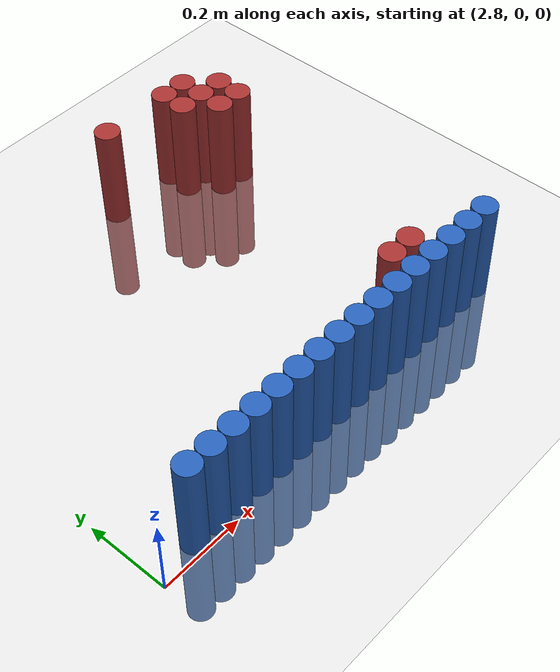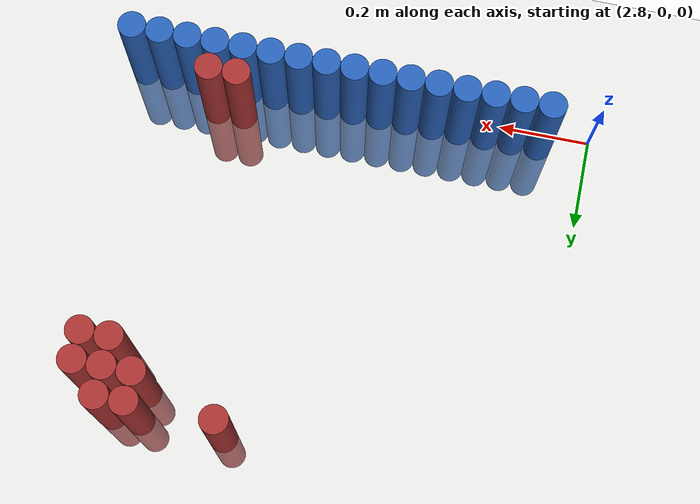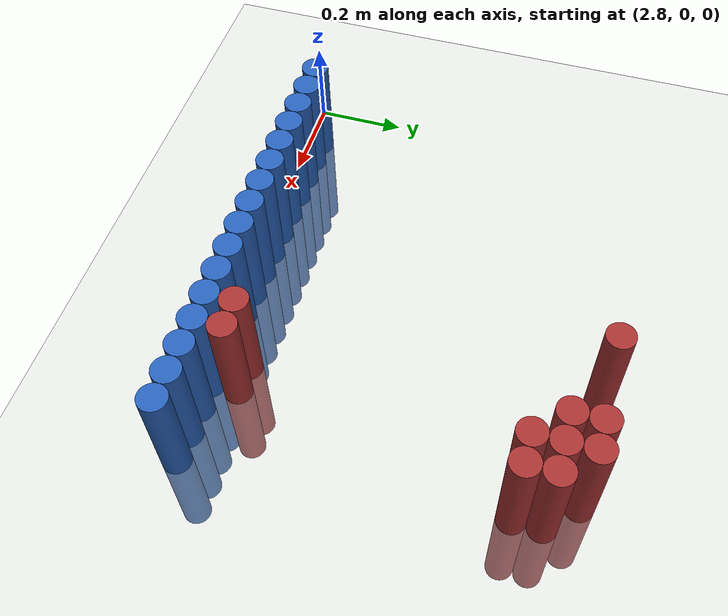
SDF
<sdf version="1.6">
 <world name="default">
  <model name="ground_plane">
   <static>1</static>
   <link name="link">
    <collision name="collision">
     <geometry><plane><normal>0 0 1</normal><size>100 100</size></plane></geometry>
     <surface><friction><ode><mu>100</mu><mu2>50</mu2></ode></friction></surface>
    </collision>
    <visual name="visual">
     <cast_shadows>0</cast_shadows>
     <geometry><plane><normal>0 0 1</normal><size>100 100</size></plane></geometry>
     <material>
      <script><uri>file://media/materials/scripts/gazebo.material</uri><name>Gazebo/Grey</name></script>
     </material>
    </visual>
   </link>
  </model>
  <model name="unit_cylinder_154">
   <static>1</static>
   <pose>3.450000 0.810000 0.000000 0.000000 0.000000 0.000000</pose>
   <link name="link">
    <inertial>
     <mass>1</mass>
     <inertia><ixx>0.145833</ixx><ixy>0</ixy><ixz>0</ixz><iyy>0.145833</iyy><iyz>0</iyz><izz>0.125</izz></inertia>
    </inertial>
    <collision name="collision">
     <geometry><cylinder><radius>0.030000</radius><length>0.5</length></cylinder></geometry>
    </collision>
    <visual name="visual">
     <geometry><cylinder><radius>0.030000</radius><length>0.5</length></cylinder></geometry>
     <material>
      <ambient>0.648000 0.192000 0.192000 1</ambient>
      <diffuse>0.648000 0.192000 0.192000 1</diffuse>
     </material>
     <material>
      <script><name>Gazebo/Grey</name><uri>file://media/materials/scripts/gazebo.material</uri></script>
     </material>
    </visual>
   </link>
  </model>
  <model name="unit_cylinder_155">
   <static>1</static>
   <pose>3.630000 0.810000 0.000000 0.000000 0.000000 0.000000</pose>
   <link name="link">
    <inertial>
     <mass>1</mass>
     <inertia><ixx>0.145833</ixx><ixy>0</ixy><ixz>0</ixz><iyy>0.145833</iyy><iyz>0</iyz><izz>0.125</izz></inertia>
    </inertial>
    <collision name="collision">
     <geometry><cylinder><radius>0.030000</radius><length>0.5</length></cylinder></geometry>
    </collision>
    <visual name="visual">
     <geometry><cylinder><radius>0.030000</radius><length>0.5</length></cylinder></geometry>
     <material>
      <ambient>0.648000 0.192000 0.192000 1</ambient>
      <diffuse>0.648000 0.192000 0.192000 1</diffuse>
     </material>
     <material>
      <script><name>Gazebo/Grey</name><uri>file://media/materials/scripts/gazebo.material</uri></script>
     </material>
    </visual>
   </link>
  </model>
  <model name="unit_cylinder_156">
   <static>1</static>
   <pose>3.690000 0.810000 0.000000 0.000000 0.000000 0.000000</pose>
   <link name="link">
    <inertial>
     <mass>1</mass>
     <inertia><ixx>0.145833</ixx><ixy>0</ixy><ixz>0</ixz><iyy>0.145833</iyy><iyz>0</iyz><izz>0.125</izz></inertia>
    </inertial>
    <collision name="collision">
     <geometry><cylinder><radius>0.030000</radius><length>0.5</length></cylinder></geometry>
    </collision>
    <visual name="visual">
     <geometry><cylinder><radius>0.030000</radius><length>0.5</length></cylinder></geometry>
     <material>
      <ambient>0.648000 0.192000 0.192000 1</ambient>
      <diffuse>0.648000 0.192000 0.192000 1</diffuse>
     </material>
     <material>
      <script><name>Gazebo/Grey</name><uri>file://media/materials/scripts/gazebo.material</uri></script>
     </material>
    </visual>
   </link>
  </model>
  <model name="unit_cylinder_160">
   <static>1</static>
   <pose>3.630000 0.750000 0.000000 0.000000 0.000000 0.000000</pose>
   <link name="link">
    <inertial>
     <mass>1</mass>
     <inertia><ixx>0.145833</ixx><ixy>0</ixy><ixz>0</ixz><iyy>0.145833</iyy><iyz>0</iyz><izz>0.125</izz></inertia>
    </inertial>
    <collision name="collision">
     <geometry><cylinder><radius>0.030000</radius><length>0.5</length></cylinder></geometry>
    </collision>
    <visual name="visual">
     <geometry><cylinder><radius>0.030000</radius><length>0.5</length></cylinder></geometry>
     <material>
      <ambient>0.648000 0.192000 0.192000 1</ambient>
      <diffuse>0.648000 0.192000 0.192000 1</diffuse>
     </material>
     <material>
      <script><name>Gazebo/Grey</name><uri>file://media/materials/scripts/gazebo.material</uri></script>
     </material>
    </visual>
   </link>
  </model>
  <model name="unit_cylinder_161">
   <static>1</static>
   <pose>3.690000 0.750000 0.000000 0.000000 0.000000 0.000000</pose>
   <link name="link">
    <inertial>
     <mass>1</mass>
     <inertia><ixx>0.145833</ixx><ixy>0</ixy><ixz>0</ixz><iyy>0.145833</iyy><iyz>0</iyz><izz>0.125</izz></inertia>
    </inertial>
    <collision name="collision">
     <geometry><cylinder><radius>0.030000</radius><length>0.5</length></cylinder></geometry>
    </collision>
    <visual name="visual">
     <geometry><cylinder><radius>0.030000</radius><length>0.5</length></cylinder></geometry>
     <material>
      <ambient>0.648000 0.192000 0.192000 1</ambient>
      <diffuse>0.648000 0.192000 0.192000 1</diffuse>
     </material>
     <material>
      <script><name>Gazebo/Grey</name><uri>file://media/materials/scripts/gazebo.material</uri></script>
     </material>
    </visual>
   </link>
  </model>
  <model name="unit_cylinder_162">
   <static>1</static>
   <pose>3.750000 0.750000 0.000000 0.000000 0.000000 0.000000</pose>
   <link name="link">
    <inertial>
     <mass>1</mass>
     <inertia><ixx>0.145833</ixx><ixy>0</ixy><ixz>0</ixz><iyy>0.145833</iyy><iyz>0</iyz><izz>0.125</izz></inertia>
    </inertial>
    <collision name="collision">
     <geometry><cylinder><radius>0.030000</radius><length>0.5</length></cylinder></geometry>
    </collision>
    <visual name="visual">
     <geometry><cylinder><radius>0.030000</radius><length>0.5</length></cylinder></geometry>
     <material>
      <ambient>0.648000 0.192000 0.192000 1</ambient>
      <diffuse>0.648000 0.192000 0.192000 1</diffuse>
     </material>
     <material>
      <script><name>Gazebo/Grey</name><uri>file://media/materials/scripts/gazebo.material</uri></script>
     </material>
    </visual>
   </link>
  </model>
  <model name="unit_cylinder_164">
   <static>1</static>
   <pose>3.690000 0.690000 0.000000 0.000000 0.000000 0.000000</pose>
   <link name="link">
    <inertial>
     <mass>1</mass>
     <inertia><ixx>0.145833</ixx><ixy>0</ixy><ixz>0</ixz><iyy>0.145833</iyy><iyz>0</iyz><izz>0.125</izz></inertia>
    </inertial>
    <collision name="collision">
     <geometry><cylinder><radius>0.030000</radius><length>0.5</length></cylinder></geometry>
    </collision>
    <visual name="visual">
     <geometry><cylinder><radius>0.030000</radius><length>0.5</length></cylinder></geometry>
     <material>
      <ambient>0.648000 0.192000 0.192000 1</ambient>
      <diffuse>0.648000 0.192000 0.192000 1</diffuse>
     </material>
     <material>
      <script><name>Gazebo/Grey</name><uri>file://media/materials/scripts/gazebo.material</uri></script>
     </material>
    </visual>
   </link>
  </model>
  <model name="unit_cylinder_165">
   <static>1</static>
   <pose>3.750000 0.690000 0.000000 0.000000 0.000000 0.000000</pose>
   <link name="link">
    <inertial>
     <mass>1</mass>
     <inertia><ixx>0.145833</ixx><ixy>0</ixy><ixz>0</ixz><iyy>0.145833</iyy><iyz>0</iyz><izz>0.125</izz></inertia>
    </inertial>
    <collision name="collision">
     <geometry><cylinder><radius>0.030000</radius><length>0.5</length></cylinder></geometry>
    </collision>
    <visual name="visual">
     <geometry><cylinder><radius>0.030000</radius><length>0.5</length></cylinder></geometry>
     <material>
      <ambient>0.648000 0.192000 0.192000 1</ambient>
      <diffuse>0.648000 0.192000 0.192000 1</diffuse>
     </material>
     <material>
      <script><name>Gazebo/Grey</name><uri>file://media/materials/scripts/gazebo.material</uri></script>
     </material>
    </visual>
   </link>
  </model>
  <model name="unit_cylinder_173">
   <static>1</static>
   <pose>3.570000 0.090000 0.000000 0.000000 0.000000 0.000000</pose>
   <link name="link">
    <inertial>
     <mass>1</mass>
     <inertia><ixx>0.145833</ixx><ixy>0</ixy><ixz>0</ixz><iyy>0.145833</iyy><iyz>0</iyz><izz>0.125</izz></inertia>
    </inertial>
    <collision name="collision">
     <geometry><cylinder><radius>0.030000</radius><length>0.5</length></cylinder></geometry>
    </collision>
    <visual name="visual">
     <geometry><cylinder><radius>0.030000</radius><length>0.5</length></cylinder></geometry>
     <material>
      <ambient>0.648000 0.192000 0.192000 1</ambient>
      <diffuse>0.648000 0.192000 0.192000 1</diffuse>
     </material>
     <material>
      <script><name>Gazebo/Grey</name><uri>file://media/materials/scripts/gazebo.material</uri></script>
     </material>
    </visual>
   </link>
  </model>
  <model name="unit_cylinder_174">
   <static>1</static>
   <pose>3.630000 0.090000 0.000000 0.000000 0.000000 0.000000</pose>
   <link name="link">
    <inertial>
     <mass>1</mass>
     <inertia><ixx>0.145833</ixx><ixy>0</ixy><ixz>0</ixz><iyy>0.145833</iyy><iyz>0</iyz><izz>0.125</izz></inertia>
    </inertial>
    <collision name="collision">
     <geometry><cylinder><radius>0.030000</radius><length>0.5</length></cylinder></geometry>
    </collision>
    <visual name="visual">
     <geometry><cylinder><radius>0.030000</radius><length>0.5</length></cylinder></geometry>
     <material>
      <ambient>0.648000 0.192000 0.192000 1</ambient>
      <diffuse>0.648000 0.192000 0.192000 1</diffuse>
     </material>
     <material>
      <script><name>Gazebo/Grey</name><uri>file://media/materials/scripts/gazebo.material</uri></script>
     </material>
    </visual>
   </link>
  </model>
  <model name="unit_cylinder_189">
   <static>1</static>
   <pose>2.910000 0.030000 0.000000 0.000000 0.000000 0.000000</pose>
   <link name="link">
    <inertial>
     <mass>1</mass>
     <inertia><ixx>0.145833</ixx><ixy>0</ixy><ixz>0</ixz><iyy>0.145833</iyy><iyz>0</iyz><izz>0.125</izz></inertia>
    </inertial>
    <collision name="collision">
     <geometry><cylinder><radius>0.030000</radius><length>0.5</length></cylinder></geometry>
    </collision>
    <visual name="visual">
     <geometry><cylinder><radius>0.030000</radius><length>0.5</length></cylinder></geometry>
     <material>
      <ambient>0.152000 0.379000 0.720000 1</ambient>
      <diffuse>0.152000 0.379000 0.720000 1</diffuse>
     </material>
     <material>
      <script><name>Gazebo/Grey</name><uri>file://media/materials/scripts/gazebo.material</uri></script>
     </material>
    </visual>
   </link>
  </model>
  <model name="unit_cylinder_190">
   <static>1</static>
   <pose>2.970000 0.030000 0.000000 0.000000 0.000000 0.000000</pose>
   <link name="link">
    <inertial>
     <mass>1</mass>
     <inertia><ixx>0.145833</ixx><ixy>0</ixy><ixz>0</ixz><iyy>0.145833</iyy><iyz>0</iyz><izz>0.125</izz></inertia>
    </inertial>
    <collision name="collision">
     <geometry><cylinder><radius>0.030000</radius><length>0.5</length></cylinder></geometry>
    </collision>
    <visual name="visual">
     <geometry><cylinder><radius>0.030000</radius><length>0.5</length></cylinder></geometry>
     <material>
      <ambient>0.152000 0.379000 0.720000 1</ambient>
      <diffuse>0.152000 0.379000 0.720000 1</diffuse>
     </material>
     <material>
      <script><name>Gazebo/Grey</name><uri>file://media/materials/scripts/gazebo.material</uri></script>
     </material>
    </visual>
   </link>
  </model>
  <model name="unit_cylinder_191">
   <static>1</static>
   <pose>3.030000 0.030000 0.000000 0.000000 0.000000 0.000000</pose>
   <link name="link">
    <inertial>
     <mass>1</mass>
     <inertia><ixx>0.145833</ixx><ixy>0</ixy><ixz>0</ixz><iyy>0.145833</iyy><iyz>0</iyz><izz>0.125</izz></inertia>
    </inertial>
    <collision name="collision">
     <geometry><cylinder><radius>0.030000</radius><length>0.5</length></cylinder></geometry>
    </collision>
    <visual name="visual">
     <geometry><cylinder><radius>0.030000</radius><length>0.5</length></cylinder></geometry>
     <material>
      <ambient>0.152000 0.379000 0.720000 1</ambient>
      <diffuse>0.152000 0.379000 0.720000 1</diffuse>
     </material>
     <material>
      <script><name>Gazebo/Grey</name><uri>file://media/materials/scripts/gazebo.material</uri></script>
     </material>
    </visual>
   </link>
  </model>
  <model name="unit_cylinder_192">
   <static>1</static>
   <pose>3.090000 0.030000 0.000000 0.000000 0.000000 0.000000</pose>
   <link name="link">
    <inertial>
     <mass>1</mass>
     <inertia><ixx>0.145833</ixx><ixy>0</ixy><ixz>0</ixz><iyy>0.145833</iyy><iyz>0</iyz><izz>0.125</izz></inertia>
    </inertial>
    <collision name="collision">
     <geometry><cylinder><radius>0.030000</radius><length>0.5</length></cylinder></geometry>
    </collision>
    <visual name="visual">
     <geometry><cylinder><radius>0.030000</radius><length>0.5</length></cylinder></geometry>
     <material>
      <ambient>0.152000 0.379000 0.720000 1</ambient>
      <diffuse>0.152000 0.379000 0.720000 1</diffuse>
     </material>
     <material>
      <script><name>Gazebo/Grey</name><uri>file://media/materials/scripts/gazebo.material</uri></script>
     </material>
    </visual>
   </link>
  </model>
  <model name="unit_cylinder_193">
   <static>1</static>
   <pose>3.150000 0.030000 0.000000 0.000000 0.000000 0.000000</pose>
   <link name="link">
    <inertial>
     <mass>1</mass>
     <inertia><ixx>0.145833</ixx><ixy>0</ixy><ixz>0</ixz><iyy>0.145833</iyy><iyz>0</iyz><izz>0.125</izz></inertia>
    </inertial>
    <collision name="collision">
     <geometry><cylinder><radius>0.030000</radius><length>0.5</length></cylinder></geometry>
    </collision>
    <visual name="visual">
     <geometry><cylinder><radius>0.030000</radius><length>0.5</length></cylinder></geometry>
     <material>
      <ambient>0.152000 0.379000 0.720000 1</ambient>
      <diffuse>0.152000 0.379000 0.720000 1</diffuse>
     </material>
     <material>
      <script><name>Gazebo/Grey</name><uri>file://media/materials/scripts/gazebo.material</uri></script>
     </material>
    </visual>
   </link>
  </model>
  <model name="unit_cylinder_194">
   <static>1</static>
   <pose>3.210000 0.030000 0.000000 0.000000 0.000000 0.000000</pose>
   <link name="link">
    <inertial>
     <mass>1</mass>
     <inertia><ixx>0.145833</ixx><ixy>0</ixy><ixz>0</ixz><iyy>0.145833</iyy><iyz>0</iyz><izz>0.125</izz></inertia>
    </inertial>
    <collision name="collision">
     <geometry><cylinder><radius>0.030000</radius><length>0.5</length></cylinder></geometry>
    </collision>
    <visual name="visual">
     <geometry><cylinder><radius>0.030000</radius><length>0.5</length></cylinder></geometry>
     <material>
      <ambient>0.152000 0.379000 0.720000 1</ambient>
      <diffuse>0.152000 0.379000 0.720000 1</diffuse>
     </material>
     <material>
      <script><name>Gazebo/Grey</name><uri>file://media/materials/scripts/gazebo.material</uri></script>
     </material>
    </visual>
   </link>
  </model>
  <model name="unit_cylinder_195">
   <static>1</static>
   <pose>3.270000 0.030000 0.000000 0.000000 0.000000 0.000000</pose>
   <link name="link">
    <inertial>
     <mass>1</mass>
     <inertia><ixx>0.145833</ixx><ixy>0</ixy><ixz>0</ixz><iyy>0.145833</iyy><iyz>0</iyz><izz>0.125</izz></inertia>
    </inertial>
    <collision name="collision">
     <geometry><cylinder><radius>0.030000</radius><length>0.5</length></cylinder></geometry>
    </collision>
    <visual name="visual">
     <geometry><cylinder><radius>0.030000</radius><length>0.5</length></cylinder></geometry>
     <material>
      <ambient>0.152000 0.379000 0.720000 1</ambient>
      <diffuse>0.152000 0.379000 0.720000 1</diffuse>
     </material>
     <material>
      <script><name>Gazebo/Grey</name><uri>file://media/materials/scripts/gazebo.material</uri></script>
     </material>
    </visual>
   </link>
  </model>
  <model name="unit_cylinder_196">
   <static>1</static>
   <pose>3.330000 0.030000 0.000000 0.000000 0.000000 0.000000</pose>
   <link name="link">
    <inertial>
     <mass>1</mass>
     <inertia><ixx>0.145833</ixx><ixy>0</ixy><ixz>0</ixz><iyy>0.145833</iyy><iyz>0</iyz><izz>0.125</izz></inertia>
    </inertial>
    <collision name="collision">
     <geometry><cylinder><radius>0.030000</radius><length>0.5</length></cylinder></geometry>
    </collision>
    <visual name="visual">
     <geometry><cylinder><radius>0.030000</radius><length>0.5</length></cylinder></geometry>
     <material>
      <ambient>0.152000 0.379000 0.720000 1</ambient>
      <diffuse>0.152000 0.379000 0.720000 1</diffuse>
     </material>
     <material>
      <script><name>Gazebo/Grey</name><uri>file://media/materials/scripts/gazebo.material</uri></script>
     </material>
    </visual>
   </link>
  </model>
  <model name="unit_cylinder_197">
   <static>1</static>
   <pose>3.390000 0.030000 0.000000 0.000000 0.000000 0.000000</pose>
   <link name="link">
    <inertial>
     <mass>1</mass>
     <inertia><ixx>0.145833</ixx><ixy>0</ixy><ixz>0</ixz><iyy>0.145833</iyy><iyz>0</iyz><izz>0.125</izz></inertia>
    </inertial>
    <collision name="collision">
     <geometry><cylinder><radius>0.030000</radius><length>0.5</length></cylinder></geometry>
    </collision>
    <visual name="visual">
     <geometry><cylinder><radius>0.030000</radius><length>0.5</length></cylinder></geometry>
     <material>
      <ambient>0.152000 0.379000 0.720000 1</ambient>
      <diffuse>0.152000 0.379000 0.720000 1</diffuse>
     </material>
     <material>
      <script><name>Gazebo/Grey</name><uri>file://media/materials/scripts/gazebo.material</uri></script>
     </material>
    </visual>
   </link>
  </model>
  <model name="unit_cylinder_198">
   <static>1</static>
   <pose>3.450000 0.030000 0.000000 0.000000 0.000000 0.000000</pose>
   <link name="link">
    <inertial>
     <mass>1</mass>
     <inertia><ixx>0.145833</ixx><ixy>0</ixy><ixz>0</ixz><iyy>0.145833</iyy><iyz>0</iyz><izz>0.125</izz></inertia>
    </inertial>
    <collision name="collision">
     <geometry><cylinder><radius>0.030000</radius><length>0.5</length></cylinder></geometry>
    </collision>
    <visual name="visual">
     <geometry><cylinder><radius>0.030000</radius><length>0.5</length></cylinder></geometry>
     <material>
      <ambient>0.152000 0.379000 0.720000 1</ambient>
      <diffuse>0.152000 0.379000 0.720000 1</diffuse>
     </material>
     <material>
      <script><name>Gazebo/Grey</name><uri>file://media/materials/scripts/gazebo.material</uri></script>
     </material>
    </visual>
   </link>
  </model>
  <model name="unit_cylinder_199">
   <static>1</static>
   <pose>3.510000 0.030000 0.000000 0.000000 0.000000 0.000000</pose>
   <link name="link">
    <inertial>
     <mass>1</mass>
     <inertia><ixx>0.145833</ixx><ixy>0</ixy><ixz>0</ixz><iyy>0.145833</iyy><iyz>0</iyz><izz>0.125</izz></inertia>
    </inertial>
    <collision name="collision">
     <geometry><cylinder><radius>0.030000</radius><length>0.5</length></cylinder></geometry>
    </collision>
    <visual name="visual">
     <geometry><cylinder><radius>0.030000</radius><length>0.5</length></cylinder></geometry>
     <material>
      <ambient>0.152000 0.379000 0.720000 1</ambient>
      <diffuse>0.152000 0.379000 0.720000 1</diffuse>
     </material>
     <material>
      <script><name>Gazebo/Grey</name><uri>file://media/materials/scripts/gazebo.material</uri></script>
     </material>
    </visual>
   </link>
  </model>
  <model name="unit_cylinder_200">
   <static>1</static>
   <pose>3.570000 0.030000 0.000000 0.000000 0.000000 0.000000</pose>
   <link name="link">
    <inertial>
     <mass>1</mass>
     <inertia><ixx>0.145833</ixx><ixy>0</ixy><ixz>0</ixz><iyy>0.145833</iyy><iyz>0</iyz><izz>0.125</izz></inertia>
    </inertial>
    <collision name="collision">
     <geometry><cylinder><radius>0.030000</radius><length>0.5</length></cylinder></geometry>
    </collision>
    <visual name="visual">
     <geometry><cylinder><radius>0.030000</radius><length>0.5</length></cylinder></geometry>
     <material>
      <ambient>0.152000 0.379000 0.720000 1</ambient>
      <diffuse>0.152000 0.379000 0.720000 1</diffuse>
     </material>
     <material>
      <script><name>Gazebo/Grey</name><uri>file://media/materials/scripts/gazebo.material</uri></script>
     </material>
    </visual>
   </link>
  </model>
  <model name="unit_cylinder_201">
   <static>1</static>
   <pose>3.630000 0.030000 0.000000 0.000000 0.000000 0.000000</pose>
   <link name="link">
    <inertial>
     <mass>1</mass>
     <inertia><ixx>0.145833</ixx><ixy>0</ixy><ixz>0</ixz><iyy>0.145833</iyy><iyz>0</iyz><izz>0.125</izz></inertia>
    </inertial>
    <collision name="collision">
     <geometry><cylinder><radius>0.030000</radius><length>0.5</length></cylinder></geometry>
    </collision>
    <visual name="visual">
     <geometry><cylinder><radius>0.030000</radius><length>0.5</length></cylinder></geometry>
     <material>
      <ambient>0.152000 0.379000 0.720000 1</ambient>
      <diffuse>0.152000 0.379000 0.720000 1</diffuse>
     </material>
     <material>
      <script><name>Gazebo/Grey</name><uri>file://media/materials/scripts/gazebo.material</uri></script>
     </material>
    </visual>
   </link>
  </model>
  <model name="unit_cylinder_202">
   <static>1</static>
   <pose>3.690000 0.030000 0.000000 0.000000 0.000000 0.000000</pose>
   <link name="link">
    <inertial>
     <mass>1</mass>
     <inertia><ixx>0.145833</ixx><ixy>0</ixy><ixz>0</ixz><iyy>0.145833</iyy><iyz>0</iyz><izz>0.125</izz></inertia>
    </inertial>
    <collision name="collision">
     <geometry><cylinder><radius>0.030000</radius><length>0.5</length></cylinder></geometry>
    </collision>
    <visual name="visual">
     <geometry><cylinder><radius>0.030000</radius><length>0.5</length></cylinder></geometry>
     <material>
      <ambient>0.152000 0.379000 0.720000 1</ambient>
      <diffuse>0.152000 0.379000 0.720000 1</diffuse>
     </material>
     <material>
      <script><name>Gazebo/Grey</name><uri>file://media/materials/scripts/gazebo.material</uri></script>
     </material>
    </visual>
   </link>
  </model>
  <model name="unit_cylinder_203">
   <static>1</static>
   <pose>3.750000 0.030000 0.000000 0.000000 0.000000 0.000000</pose>
   <link name="link">
    <inertial>
     <mass>1</mass>
     <inertia><ixx>0.145833</ixx><ixy>0</ixy><ixz>0</ixz><iyy>0.145833</iyy><iyz>0</iyz><izz>0.125</izz></inertia>
    </inertial>
    <collision name="collision">
     <geometry><cylinder><radius>0.030000</radius><length>0.5</length></cylinder></geometry>
    </collision>
    <visual name="visual">
     <geometry><cylinder><radius>0.030000</radius><length>0.5</length></cylinder></geometry>
     <material>
      <ambient>0.152000 0.379000 0.720000 1</ambient>
      <diffuse>0.152000 0.379000 0.720000 1</diffuse>
     </material>
     <material>
      <script><name>Gazebo/Grey</name><uri>file://media/materials/scripts/gazebo.material</uri></script>
     </material>
    </visual>
   </link>
  </model>
  <model name="unit_cylinder_204">
   <static>1</static>
   <pose>3.810000 0.030000 0.000000 0.000000 0.000000 0.000000</pose>
   <link name="link">
    <inertial>
     <mass>1</mass>
     <inertia><ixx>0.145833</ixx><ixy>0</ixy><ixz>0</ixz><iyy>0.145833</iyy><iyz>0</iyz><izz>0.125</izz></inertia>
    </inertial>
    <collision name="collision">
     <geometry><cylinder><radius>0.030000</radius><length>0.5</length></cylinder></geometry>
    </collision>
    <visual name="visual">
     <geometry><cylinder><radius>0.030000</radius><length>0.5</length></cylinder></geometry>
     <material>
      <ambient>0.152000 0.379000 0.720000 1</ambient>
      <diffuse>0.152000 0.379000 0.720000 1</diffuse>
     </material>
     <material>
      <script><name>Gazebo/Grey</name><uri>file://media/materials/scripts/gazebo.material</uri></script>
     </material>
    </visual>
   </link>
  </model>
 </world>
</sdf>
